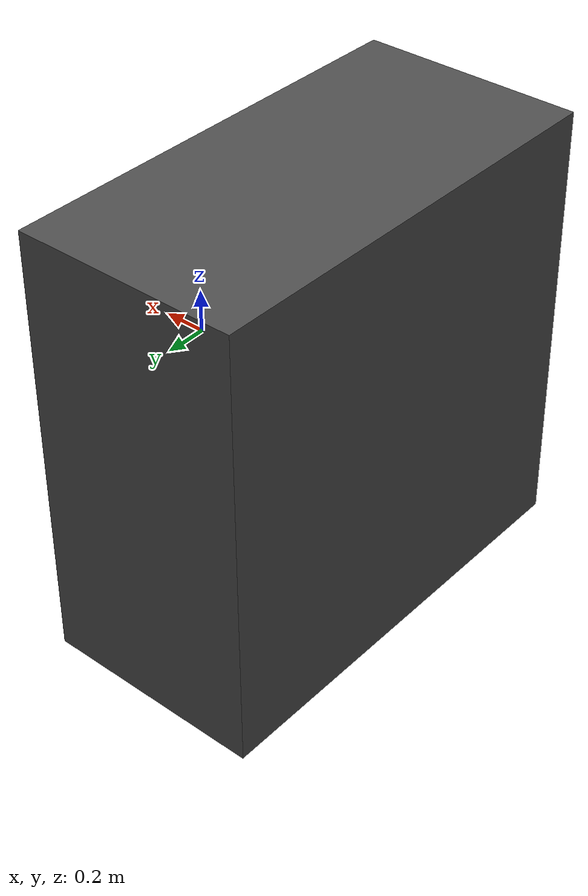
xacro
<?xml version="1.0"?>
<robot xmlns:xacro="http://www.ros.org/wiki/xacro" name="box">

<link name="world"/>

<link name="box">
   <inertial>
       <origin xyz="-0.6 0 0" rpy="0 0 0" />
     <mass value="1000"/>
     <inertia ixx="1666.6667"  ixy="0"  ixz="0" iyy="1666.6667" iyz="0" izz="2666.6667" />
   </inertial>

   <visual>
     <origin xyz="-0.6 0 0" rpy="0 0 0" />
     <geometry>
       <box size="1 2 2" />
     </geometry>
  <material name="Kuka/Red">
    <color rgba="0.3 0.3 0.3 1.0"/>
  </material>
   </visual>

   <collision>
   	<origin xyz="-0.6 0 0" rpy="0 0 0" />
     <geometry>
     <box size="1 2 2" />
     </geometry>
   </collision>
 </link>

<joint name="prismatic_joint" type="fixed">
    <parent link="world"/>
    <child link="box"/>
    <origin xyz="0 0 0" rpy="0 0 0" />
  </joint>

</robot>
